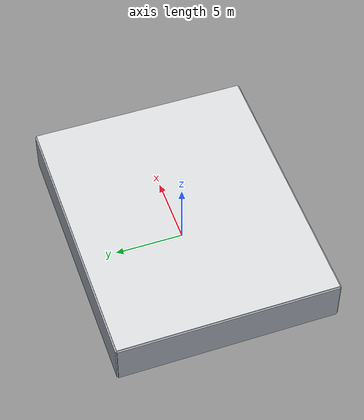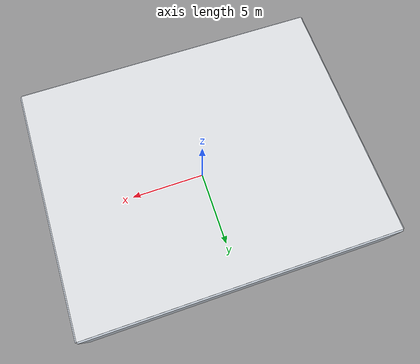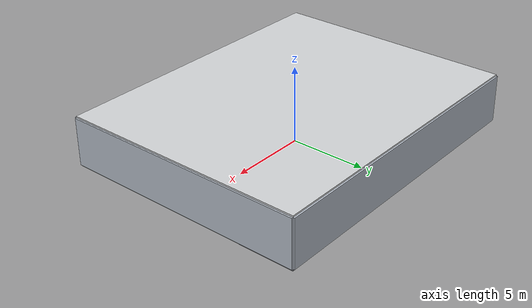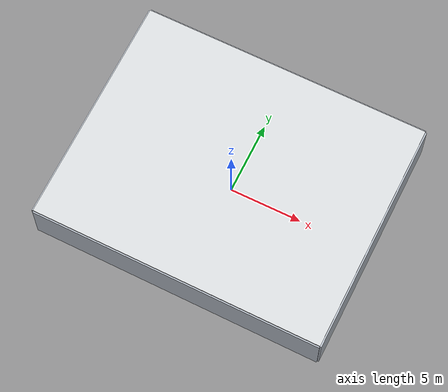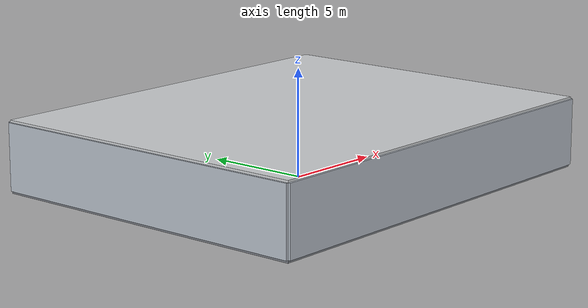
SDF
<sdf version="1.10">
 <world name="xq_p5_structured_room">
  <gravity>0 0 -9.80665</gravity>
  <physics name="xq_p5_1khz" type="ode">
   <max_step_size>0.001</max_step_size>
   <real_time_factor>1.0</real_time_factor>
   <real_time_update_rate>1000</real_time_update_rate>
  </physics>
  <plugin filename="gz-sim-physics-system" name="gz::sim::systems::Physics"/>
  <plugin filename="gz-sim-user-commands-system" name="gz::sim::systems::UserCommands"/>
  <plugin filename="gz-sim-scene-broadcaster-system" name="gz::sim::systems::SceneBroadcaster"/>
  <plugin filename="gz-sim-sensors-system" name="gz::sim::systems::Sensors">
   <render_engine>ogre2</render_engine>
  </plugin>
  <plugin filename="gz-sim-imu-system" name="gz::sim::systems::Imu"/>
  <spherical_coordinates>
   <surface_model>EARTH_WGS84</surface_model>
   <latitude_deg>-35.363262</latitude_deg>
   <longitude_deg>149.165237</longitude_deg>
   <elevation>584</elevation>
   <heading_deg>0</heading_deg>
  </spherical_coordinates>
  <scene><ambient>0.72 0.74 0.78</ambient><background>0.18 0.20 0.24</background><shadows>true</shadows></scene>
  <light name="xq_ceiling_light" type="directional">
   <pose>0 0 6 0 0 0</pose>
   <diffuse>0.92 0.92 0.88 1</diffuse>
   <specular>0.25 0.25 0.25 1</specular>
   <attenuation>
    <range>100</range>
    <constant>0.8</constant>
    <linear>0.01</linear>
    <quadratic>0.001</quadratic>
   </attenuation>
   <direction>-0.35 0.15 -0.92</direction>
  </light>
  <model name="xq_office_shell">
   <static>true</static>
   <link name="xq_shell_link">
    <collision name="xq_floor_collision">
     <pose>0 0 -0.06 0 0 0</pose>
     <geometry><box><size>20 16 0.12</size></box></geometry>
    </collision>
    <visual name="xq_floor_visual">
     <pose>0 0 -0.06 0 0 0</pose>
     <geometry><box><size>20 16 0.12</size></box></geometry>
     <material>
      <ambient>0.38 0.40 0.43 1</ambient>
      <diffuse>0.48 0.50 0.53 1</diffuse>
      <specular>0.08 0.08 0.08 1</specular>
     </material>
    </visual>
    <collision name="xq_wall_west_collision">
     <pose>-10 0 1.55 0 0 0</pose>
     <geometry><box><size>0.20 16 3.10</size></box></geometry>
    </collision>
    <visual name="xq_wall_west_visual">
     <pose>-10 0 1.55 0 0 0</pose>
     <geometry><box><size>0.20 16 3.10</size></box></geometry>
     <material><ambient>0.62 0.65 0.69 1</ambient><diffuse>0.72 0.75 0.79 1</diffuse></material>
    </visual>
    <collision name="xq_wall_east_collision">
     <pose>10 0 1.55 0 0 0</pose>
     <geometry><box><size>0.20 16 3.10</size></box></geometry>
    </collision>
    <visual name="xq_wall_east_visual">
     <pose>10 0 1.55 0 0 0</pose>
     <geometry><box><size>0.20 16 3.10</size></box></geometry>
     <material><ambient>0.62 0.65 0.69 1</ambient><diffuse>0.72 0.75 0.79 1</diffuse></material>
    </visual>
    <collision name="xq_wall_south_collision">
     <pose>0 -8 1.55 0 0 0</pose>
     <geometry><box><size>20 0.20 3.10</size></box></geometry>
    </collision>
    <visual name="xq_wall_south_visual">
     <pose>0 -8 1.55 0 0 0</pose>
     <geometry><box><size>20 0.20 3.10</size></box></geometry>
     <material><ambient>0.62 0.65 0.69 1</ambient><diffuse>0.72 0.75 0.79 1</diffuse></material>
    </visual>
    <collision name="xq_wall_north_collision">
     <pose>0 8 1.55 0 0 0</pose>
     <geometry><box><size>20 0.20 3.10</size></box></geometry>
    </collision>
    <visual name="xq_wall_north_visual">
     <pose>0 8 1.55 0 0 0</pose>
     <geometry><box><size>20 0.20 3.10</size></box></geometry>
     <material><ambient>0.62 0.65 0.69 1</ambient><diffuse>0.72 0.75 0.79 1</diffuse></material>
    </visual>
    <collision name="xq_core_west_collision">
     <pose>-3.0 0 1.55 0 0 0</pose>
     <geometry><box><size>0.18 4.4 3.10</size></box></geometry>
    </collision>
    <visual name="xq_core_west_visual">
     <pose>-3.0 0 1.55 0 0 0</pose>
     <geometry><box><size>0.18 4.4 3.10</size></box></geometry>
     <material><ambient>0.27 0.36 0.43 1</ambient><diffuse>0.34 0.46 0.55 1</diffuse></material>
    </visual>
    <collision name="xq_core_east_collision">
     <pose>3.0 0 1.55 0 0 0</pose>
     <geometry><box><size>0.18 4.4 3.10</size></box></geometry>
    </collision>
    <visual name="xq_core_east_visual">
     <pose>3.0 0 1.55 0 0 0</pose>
     <geometry><box><size>0.18 4.4 3.10</size></box></geometry>
     <material><ambient>0.27 0.36 0.43 1</ambient><diffuse>0.34 0.46 0.55 1</diffuse></material>
    </visual>
    <collision name="xq_core_south_collision">
     <pose>0 -2.2 1.55 0 0 0</pose>
     <geometry><box><size>6.18 0.18 3.10</size></box></geometry>
    </collision>
    <visual name="xq_core_south_visual">
     <pose>0 -2.2 1.55 0 0 0</pose>
     <geometry><box><size>6.18 0.18 3.10</size></box></geometry>
     <material><ambient>0.27 0.36 0.43 1</ambient><diffuse>0.34 0.46 0.55 1</diffuse></material>
    </visual>
    <collision name="xq_core_north_collision">
     <pose>0 2.2 1.55 0 0 0</pose>
     <geometry><box><size>6.18 0.18 3.10</size></box></geometry>
    </collision>
    <visual name="xq_core_north_visual">
     <pose>0 2.2 1.55 0 0 0</pose>
     <geometry><box><size>6.18 0.18 3.10</size></box></geometry>
     <material><ambient>0.27 0.36 0.43 1</ambient><diffuse>0.34 0.46 0.55 1</diffuse></material>
    </visual>
    <collision name="xq_partition_nw_collision">
     <pose>-6.7 3.9 1.30 0 0 0</pose>
     <geometry><box><size>4.8 0.16 2.60</size></box></geometry>
    </collision>
    <visual name="xq_partition_nw_visual">
     <pose>-6.7 3.9 1.30 0 0 0</pose>
     <geometry><box><size>4.8 0.16 2.60</size></box></geometry>
     <material><ambient>0.61 0.54 0.39 1</ambient><diffuse>0.72 0.65 0.49 1</diffuse></material>
    </visual>
    <collision name="xq_partition_ne_collision">
     <pose>6.8 4.7 1.30 0 0 0</pose>
     <geometry><box><size>0.16 5.2 2.60</size></box></geometry>
    </collision>
    <visual name="xq_partition_ne_visual">
     <pose>6.8 4.7 1.30 0 0 0</pose>
     <geometry><box><size>0.16 5.2 2.60</size></box></geometry>
     <material><ambient>0.48 0.57 0.43 1</ambient><diffuse>0.58 0.68 0.53 1</diffuse></material>
    </visual>
    <collision name="xq_partition_sw_collision">
     <pose>-5.8 -4.8 1.30 0 0 0</pose>
     <geometry><box><size>0.16 3.8 2.60</size></box></geometry>
    </collision>
    <visual name="xq_partition_sw_visual">
     <pose>-5.8 -4.8 1.30 0 0 0</pose>
     <geometry><box><size>0.16 3.8 2.60</size></box></geometry>
     <material><ambient>0.50 0.42 0.52 1</ambient><diffuse>0.61 0.52 0.63 1</diffuse></material>
    </visual>
    <collision name="xq_partition_se_collision">
     <pose>6.6 -4.5 1.30 0 0 0</pose>
     <geometry><box><size>5.0 0.16 2.60</size></box></geometry>
    </collision>
    <visual name="xq_partition_se_visual">
     <pose>6.6 -4.5 1.30 0 0 0</pose>
     <geometry><box><size>5.0 0.16 2.60</size></box></geometry>
     <material><ambient>0.47 0.49 0.60 1</ambient><diffuse>0.57 0.59 0.71 1</diffuse></material>
    </visual>
   </link>
   <link name="xq_ceiling_link">
    <collision name="xq_ceiling_collision">
     <pose>0 0 3.15 0 0 0</pose>
     <geometry><box><size>20 16 0.10</size></box></geometry>
    </collision>
    <visual name="xq_ceiling_visual">
     <pose>0 0 3.15 0 0 0</pose>
     <geometry><box><size>20 16 0.10</size></box></geometry>
     <material><ambient>0.72 0.73 0.74 1</ambient><diffuse>0.82 0.83 0.84 1</diffuse></material>
    </visual>
   </link>
  </model>
  <model name="xq_office_features">
   <static>true</static>
   <link name="xq_features_link">
    <collision name="xq_column_01_collision">
     <pose>-7.6 1.3 1.5 0 0 0</pose>
     <geometry><cylinder><radius>0.24</radius><length>3.0</length></cylinder></geometry>
    </collision>
    <visual name="xq_column_01_visual">
     <pose>-7.6 1.3 1.5 0 0 0</pose>
     <geometry><cylinder><radius>0.24</radius><length>3.0</length></cylinder></geometry>
     <material><ambient>0.72 0.43 0.12 1</ambient><diffuse>0.87 0.54 0.16 1</diffuse></material>
    </visual>
    <collision name="xq_column_02_collision">
     <pose>7.4 -0.8 1.5 0 0 0</pose>
     <geometry><cylinder><radius>0.30</radius><length>3.0</length></cylinder></geometry>
    </collision>
    <visual name="xq_column_02_visual">
     <pose>7.4 -0.8 1.5 0 0 0</pose>
     <geometry><cylinder><radius>0.30</radius><length>3.0</length></cylinder></geometry>
     <material><ambient>0.18 0.49 0.58 1</ambient><diffuse>0.22 0.62 0.72 1</diffuse></material>
    </visual>
    <collision name="xq_column_03_collision">
     <pose>-4.6 6.3 1.5 0 0 0</pose>
     <geometry><cylinder><radius>0.20</radius><length>3.0</length></cylinder></geometry>
    </collision>
    <visual name="xq_column_03_visual">
     <pose>-4.6 6.3 1.5 0 0 0</pose>
     <geometry><cylinder><radius>0.20</radius><length>3.0</length></cylinder></geometry>
     <material><ambient>0.30 0.58 0.29 1</ambient><diffuse>0.38 0.71 0.36 1</diffuse></material>
    </visual>
    <collision name="xq_desk_01_collision">
     <pose>-7.8 6.2 0.45 0 0 0.25</pose>
     <geometry><box><size>2.1 0.8 0.9</size></box></geometry>
    </collision>
    <visual name="xq_desk_01_visual">
     <pose>-7.8 6.2 0.45 0 0 0.25</pose>
     <geometry><box><size>2.1 0.8 0.9</size></box></geometry>
     <material><ambient>0.38 0.20 0.09 1</ambient><diffuse>0.51 0.29 0.12 1</diffuse></material>
    </visual>
    <collision name="xq_desk_02_collision">
     <pose>7.8 6.6 0.55 0 0 -0.35</pose>
     <geometry><box><size>1.7 0.9 1.1</size></box></geometry>
    </collision>
    <visual name="xq_desk_02_visual">
     <pose>7.8 6.6 0.55 0 0 -0.35</pose>
     <geometry><box><size>1.7 0.9 1.1</size></box></geometry>
     <material><ambient>0.23 0.28 0.36 1</ambient><diffuse>0.31 0.38 0.49 1</diffuse></material>
    </visual>
    <collision name="xq_cabinet_01_collision">
     <pose>-8.8 -1.7 1.0 0 0 0</pose>
     <geometry><box><size>0.7 1.3 2.0</size></box></geometry>
    </collision>
    <visual name="xq_cabinet_01_visual">
     <pose>-8.8 -1.7 1.0 0 0 0</pose>
     <geometry><box><size>0.7 1.3 2.0</size></box></geometry>
     <material><ambient>0.48 0.50 0.52 1</ambient><diffuse>0.58 0.60 0.62 1</diffuse></material>
    </visual>
    <collision name="xq_cabinet_02_collision">
     <pose>8.9 2.5 0.75 0 0 0</pose>
     <geometry><box><size>0.6 1.8 1.5</size></box></geometry>
    </collision>
    <visual name="xq_cabinet_02_visual">
     <pose>8.9 2.5 0.75 0 0 0</pose>
     <geometry><box><size>0.6 1.8 1.5</size></box></geometry>
     <material><ambient>0.56 0.50 0.22 1</ambient><diffuse>0.67 0.61 0.27 1</diffuse></material>
    </visual>
    <collision name="xq_crate_01_collision">
     <pose>4.8 -6.4 0.40 0.12 0.04 0.55</pose>
     <geometry><box><size>0.8 0.8 0.8</size></box></geometry>
    </collision>
    <visual name="xq_crate_01_visual">
     <pose>4.8 -6.4 0.40 0.12 0.04 0.55</pose>
     <geometry><box><size>0.8 0.8 0.8</size></box></geometry>
     <material><ambient>0.54 0.27 0.10 1</ambient><diffuse>0.68 0.35 0.13 1</diffuse></material>
    </visual>
   </link>
  </model>
 </world>
</sdf>
